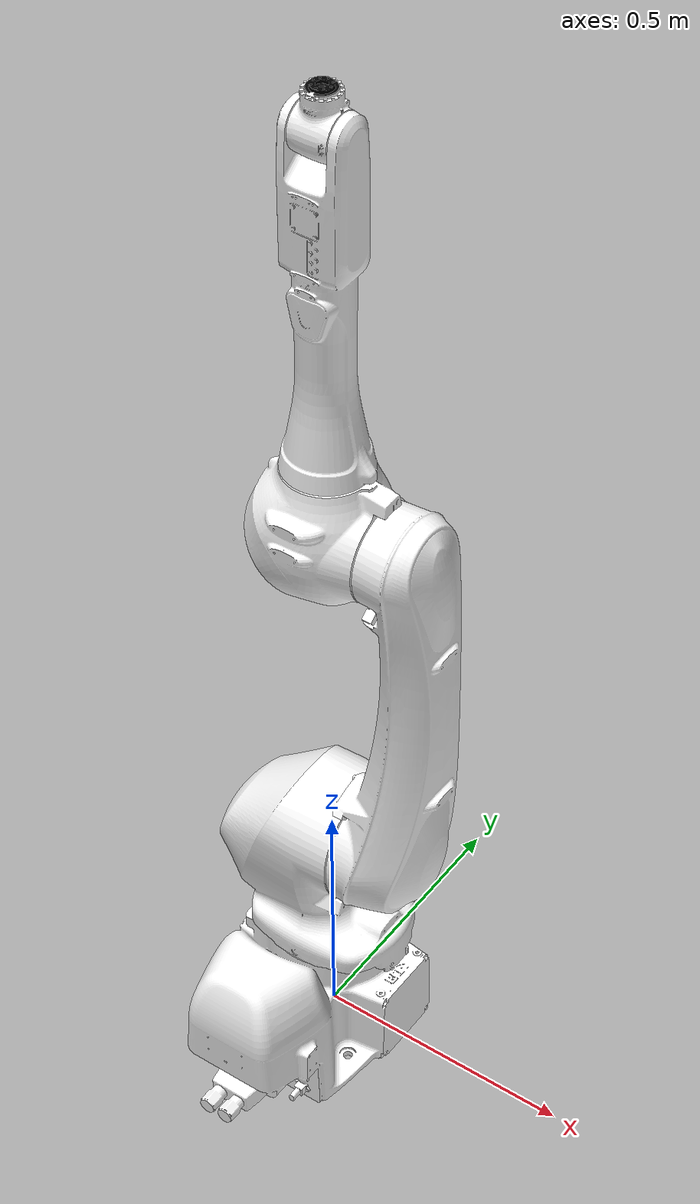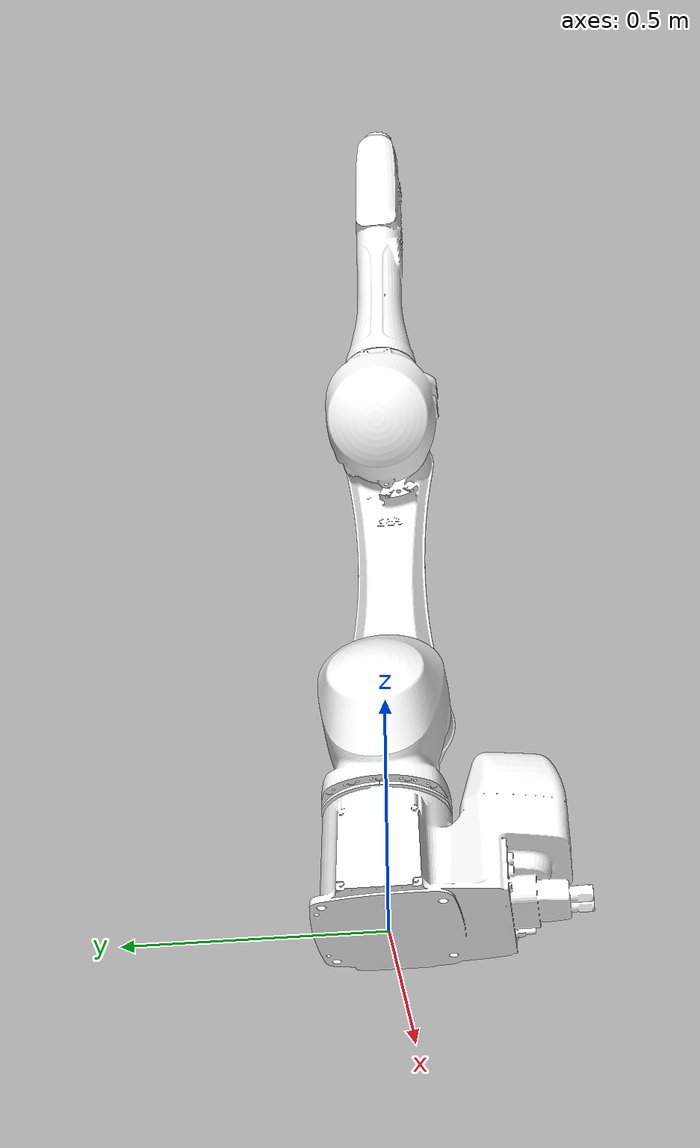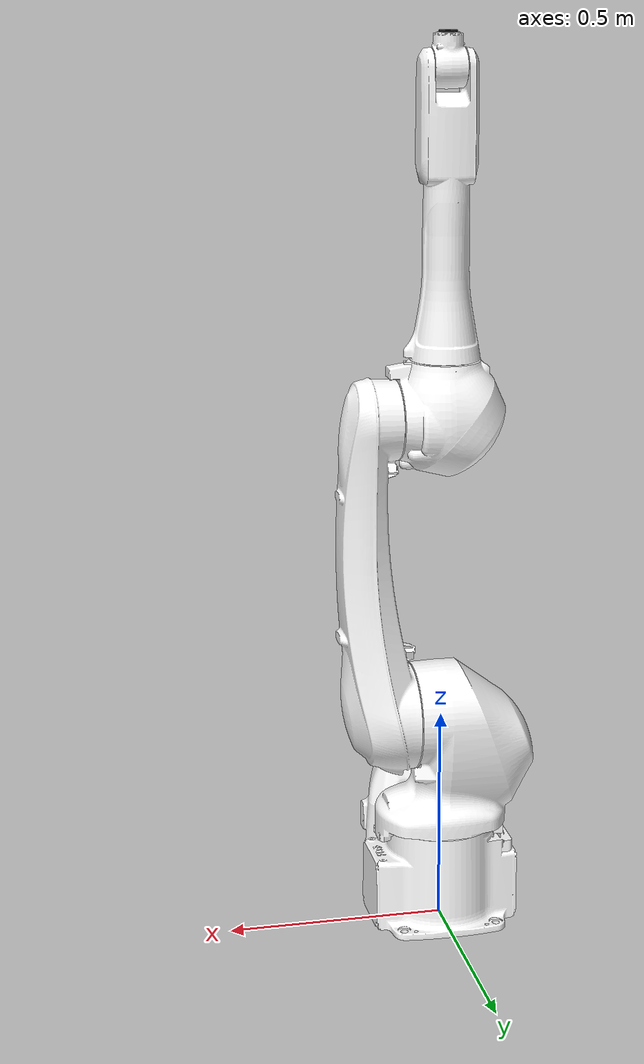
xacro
<?xml version="1.0" ?>
<robot name="khi_rs013n" xmlns:xacro="http://ros.org/wiki/xacro">
  <xacro:include filename="$(find khi_rs_description)/urdf/rs013n_macro.xacro"/>

  <!-- instantiate rs013n -->
  <xacro:khi_rs013n prefix="" />

  <!-- Fix rs013n to world -->

  <link name="world"/>

  <joint name="world2base" type="fixed">
    <parent link="world"/>
    <child link="base_link"/>
    <origin rpy="0 0 0" xyz="0 0 0"/>
  </joint>
</robot>

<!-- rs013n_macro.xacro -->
<robot xmlns:xacro="http://ros.org/wiki/xacro">
  <xacro:macro name="khi_rs013n" params="prefix">

    <xacro:include filename="$(find khi_rs_description)/urdf/rs.transmission.xacro" />
    <xacro:include filename="$(find khi_rs_description)/urdf/common.gazebo.xacro" />

    <!-- link rviz colors -->
    <material name="White">
      <color rgba="1 1 1 1"/>
    </material>

    <material name="Black">
      <color rgba="0 0 0 1"/>
    </material>

    <!-- DH parameters -->
    <xacro:property name="dh_j1_j2_roty" value="${radians(-90)}"/>
    <xacro:property name="dh_j3_j4_roty" value="${radians( 90)}"/>
    <xacro:property name="dh_j4_j5_roty" value="${radians(-90)}"/>
    <xacro:property name="dh_j5_j6_roty" value="${radians( 90)}"/>

    <!-- link mass [kg] -->
    <xacro:property name="j0_mass" value="58.671"/>
    <xacro:property name="j1_mass" value="49.492"/>
    <xacro:property name="j2_mass" value="35.291"/>
    <xacro:property name="j3_mass" value="15.457"/>
    <xacro:property name="j4_mass" value="9.297"/>
    <xacro:property name="j5_mass" value="1.792"/>
    <xacro:property name="j6_mass" value="0.0001"/>

    <!-- link lengths [m] -->
    <xacro:property name="j0_length" value="0.505"/>
    <xacro:property name="j1_length" value="0.0"/>
    <xacro:property name="j2_length" value="0.7"/>
    <xacro:property name="j3_length" value="0.11"/>
    <xacro:property name="j4_length" value="0.65"/>
    <xacro:property name="j5_length" value="0.078"/>

    <!-- joint limits [rad] -->
    <xacro:property name="j1_lower_limit" value="${radians(-180)}"/>
    <xacro:property name="j1_upper_limit" value="${radians( 180)}"/>
    <xacro:property name="j2_lower_limit" value="${radians(-105)}"/>
    <xacro:property name="j2_upper_limit" value="${radians( 138)}"/>
    <xacro:property name="j3_lower_limit" value="${radians(-159)}"/>
    <xacro:property name="j3_upper_limit" value="${radians( 135)}"/>
    <xacro:property name="j4_lower_limit" value="${radians(-200)}"/>
    <xacro:property name="j4_upper_limit" value="${radians( 200)}"/>
    <xacro:property name="j5_lower_limit" value="${radians(-125)}"/>
    <xacro:property name="j5_upper_limit" value="${radians( 125)}"/>
    <xacro:property name="j6_lower_limit" value="${radians(-360)}"/>
    <xacro:property name="j6_upper_limit" value="${radians( 360)}"/>

    <!-- joint verocity limits [rad/s] -->
    <xacro:property name="j1_velocity_limit" value="${radians( 265)}"/>
    <xacro:property name="j2_velocity_limit" value="${radians( 250)}"/>
    <xacro:property name="j3_velocity_limit" value="${radians( 265)}"/>
    <xacro:property name="j4_velocity_limit" value="${radians( 475)}"/>
    <xacro:property name="j5_velocity_limit" value="${radians( 475)}"/>
    <xacro:property name="j6_velocity_limit" value="${radians( 730)}"/>

    <!-- link inertial(TODO : set correct link inertial )-->
    <xacro:macro name="default_inertial" params="mass">
      <inertial>
        <mass value="${mass}" />
        <inertia ixx="1.0" ixy="0.0" ixz="0.0" iyy="1.0" iyz="0.0" izz="1.0" />
      </inertial>
    </xacro:macro>

    <!-- rs013n start -->

    <!-- Link 0 -->
    <link name="${prefix}base_link">
      <visual>
        <geometry>
          <mesh filename="package://khi_rs_description/meshes/RS013N_J0.stl"/>
        </geometry>
        <material name="White"/>
        <origin rpy="0 0 0" xyz="0 0 0"/>
      </visual>
      <collision>
        <geometry>
          <mesh filename="package://khi_rs_description/meshes/RS013N_J0.stl"/>
        </geometry>
        <material name="White"/>
        <origin rpy="0 0 0" xyz="0 0 0"/>
      </collision>
      <xacro:default_inertial mass="${j0_mass}"/>
    </link>

    <!-- Link 1 -->
    <joint name="${prefix}joint1" type="revolute">
      <axis xyz="0 0 -1" rpy="0 0 0" />
      <limit effort="1000.0" lower="${j1_lower_limit}" upper="${j1_upper_limit}" velocity="${j1_velocity_limit}"/>
      <origin xyz="0 0 ${j0_length}" rpy="0 0 0" />
      <parent link="${prefix}base_link"/>
      <child link="${prefix}link1"/>
      <dynamics damping="0.0" friction="0.0"/>
    </joint>

    <link name="${prefix}link1">
      <visual>
        <geometry>
          <mesh filename="package://khi_rs_description/meshes/RS013N_J1.stl"/>
        </geometry>
        <material name="White"/>
        <origin rpy="0 0 0" xyz="0 0 0"/>
      </visual>
      <collision>
        <geometry>
          <mesh filename="package://khi_rs_description/meshes/RS013N_J1.stl"/>
        </geometry>
        <material name="White"/>
        <origin rpy="0 0 0" xyz="0 0 0"/>
      </collision>
      <xacro:default_inertial mass="${j1_mass}"/>
    </link>

    <!-- Link 2 -->
    <joint name="${prefix}joint2" type="revolute">
      <axis xyz="0 0 1" rpy="0 0 0" />
      <limit effort="1000.0" lower="${j2_lower_limit}" upper="${j2_upper_limit}" velocity="${j2_velocity_limit}"/>
      <origin xyz="0 0 ${j1_length}" rpy="0 ${dh_j1_j2_roty} 0" />
      <parent link="${prefix}link1"/>
      <child link="${prefix}link2"/>
      <dynamics damping="0.0" friction="0.0"/>
    </joint>

    <link name="${prefix}link2">
      <visual>
        <geometry>
          <mesh filename="package://khi_rs_description/meshes/RS013N_J2.stl"/>
        </geometry>
        <material name="White"/>
        <origin xyz="0 0 0" rpy="0 ${dh_j1_j2_roty*-1} 0"/>
      </visual>
      <collision>
        <geometry>
          <mesh filename="package://khi_rs_description/meshes/RS013N_J2.stl"/>
        </geometry>
        <material name="White"/>
        <origin xyz="0 0 0" rpy="0 ${dh_j1_j2_roty*-1} 0"/>
      </collision>
      <xacro:default_inertial mass="0${j2_mass}"/>
    </link>

    <!-- Link 3 -->
    <joint name="${prefix}joint3" type="revolute">
      <axis xyz="0 0 -1" rpy="0 0 0" />
      <limit effort="1000.0" lower="${j3_lower_limit}" upper="${j3_upper_limit}" velocity="${j3_velocity_limit}"/>
      <origin xyz="${j2_length} 0 0" rpy="0 0 0" />
      <parent link="${prefix}link2"/>
      <child link="${prefix}link3"/>
      <dynamics damping="0.0" friction="0.0"/>
    </joint>

    <link name="${prefix}link3">
      <visual>
        <geometry>
          <mesh filename="package://khi_rs_description/meshes/RS013N_J3.stl"/>
        </geometry>
        <material name="White"/>
        <origin xyz="0 0 0" rpy="0 ${dh_j1_j2_roty*-1} 0"/>
      </visual>
      <collision>
        <geometry>
          <mesh filename="package://khi_rs_description/meshes/RS013N_J3.stl"/>
        </geometry>
        <material name="White"/>
        <origin xyz="0 0 0" rpy="0 ${dh_j1_j2_roty*-1} 0"/>
      </collision>
      <xacro:default_inertial mass="${j3_mass}"/>
    </link>

    <!-- Link 4 -->
    <joint name="${prefix}joint4" type="revolute">
      <axis xyz="0 0 1" rpy="0 0 0" />
      <limit effort="1000.0" lower="${j4_lower_limit}" upper="${j4_upper_limit}" velocity="${j4_velocity_limit}"/>
      <origin xyz="${j3_length} 0 0" rpy="0 ${dh_j3_j4_roty} 0" />
      <parent link="${prefix}link3"/>
      <child link="${prefix}link4"/>
      <dynamics damping="0.0" friction="0.0"/>
    </joint>

    <link name="${prefix}link4">
      <visual>
        <geometry>
          <mesh filename="package://khi_rs_description/meshes/RS013N_J4.stl"/>
        </geometry>
        <material name="White"/>
        <origin xyz="0 0 ${j4_length}" rpy="0 0 0"/>
      </visual>
      <collision>
        <geometry>
          <mesh filename="package://khi_rs_description/meshes/RS013N_J4.stl"/>
        </geometry>
        <material name="White"/>
        <origin xyz="0 0 ${j4_length}" rpy="0 0 0"/>
      </collision>
      <xacro:default_inertial mass="${j4_mass}"/>
    </link>

    <!-- Link 5 -->
    <joint name="${prefix}joint5" type="revolute">
      <axis xyz="0 0 -1" rpy="0 0 0" />
      <limit effort="1000.0" lower="${j5_lower_limit}" upper="${j5_upper_limit}" velocity="${j5_velocity_limit}"/>
      <origin xyz="0 0 ${j4_length}" rpy="0 ${dh_j4_j5_roty} 0" />
      <parent link="${prefix}link4"/>
      <child link="${prefix}link5"/>
      <dynamics damping="0.0" friction="0.0"/>
    </joint>

    <link name="${prefix}link5">
      <visual>
        <geometry>
          <mesh filename="package://khi_rs_description/meshes/RS013N_J5.stl"/>
        </geometry>
        <material name="White"/>
        <origin xyz="0 0 0" rpy="0 ${dh_j4_j5_roty*-1} 0"/>
      </visual>
      <collision>
        <geometry>
          <mesh filename="package://khi_rs_description/meshes/RS013N_J5.stl"/>
        </geometry>
        <material name="White"/>
        <origin xyz="0 0 0" rpy="0 ${dh_j4_j5_roty*-1} 0"/>
      </collision>
      <xacro:default_inertial mass="${j5_mass}"/>
    </link>

    <!-- Link 6 -->
    <joint name="${prefix}joint6" type="revolute">
      <axis xyz="0 0 1" rpy="0 0 0" />
      <limit effort="1000.0" lower="${j6_lower_limit}" upper="${j6_upper_limit}" velocity="${j6_velocity_limit}"/>
      <origin xyz="${j5_length} 0 0" rpy="0 ${dh_j5_j6_roty} 0" />
      <parent link="${prefix}link5"/>
      <child link="${prefix}link6"/>
      <dynamics damping="0.0" friction="0.0"/>
    </joint>

    <link name="${prefix}link6">
      <visual>
        <geometry>
          <mesh filename="package://khi_rs_description/meshes/RS013N_J6.stl"/>
        </geometry>
        <material name="Black"/>
        <origin xyz="0 0 0" rpy="0 0 0"/>
      </visual>
      <collision>
        <geometry>
          <mesh filename="package://khi_rs_description/meshes/RS013N_J6.stl"/>
        </geometry>
        <material name="Black"/>
        <origin xyz="0 0 0" rpy="0 0 0"/>
      </collision>
      <xacro:default_inertial mass="${j6_mass}"/>
    </link>
  </xacro:macro>
</robot>
